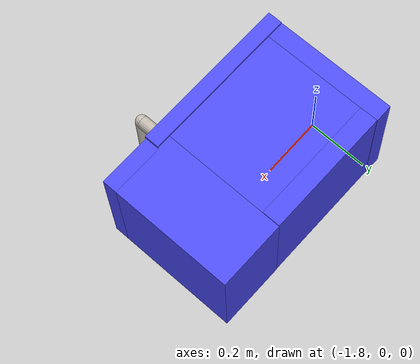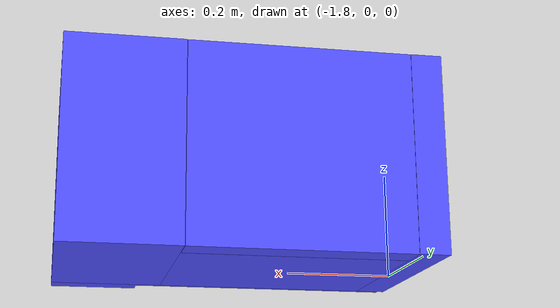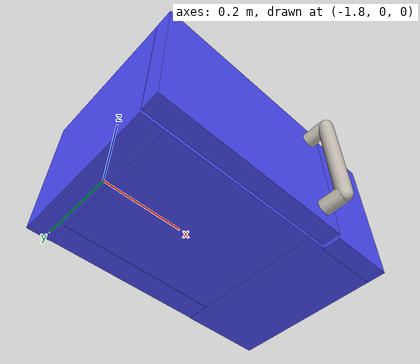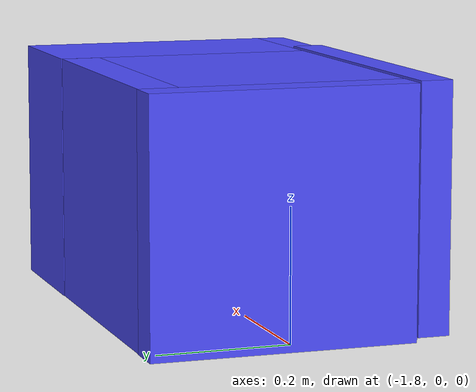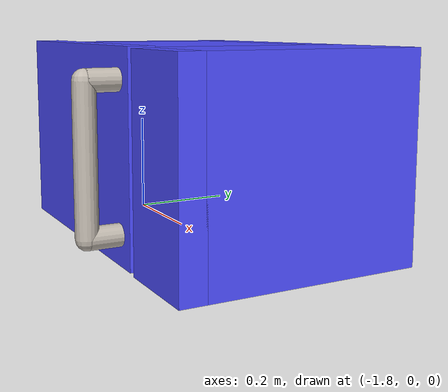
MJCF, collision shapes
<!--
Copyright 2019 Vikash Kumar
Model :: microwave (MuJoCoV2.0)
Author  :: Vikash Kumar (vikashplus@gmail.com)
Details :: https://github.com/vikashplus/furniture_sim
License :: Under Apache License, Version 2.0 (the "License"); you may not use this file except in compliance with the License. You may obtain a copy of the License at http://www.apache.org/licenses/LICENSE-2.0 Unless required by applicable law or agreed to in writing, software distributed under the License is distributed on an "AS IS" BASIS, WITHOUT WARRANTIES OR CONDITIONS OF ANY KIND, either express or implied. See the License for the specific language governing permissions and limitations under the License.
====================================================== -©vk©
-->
<mujoco model="microwave">
    <compiler angle="radian" />
    <include file="../furniture_sim/microwave/microwave_asset.xml"/>
    <visual>
        <headlight diffuse=".9 .9 .9"/>
    </visual>
    <!--- Microwave -©vk©-->
    <worldbody>

        <body pos="-1.5 0 0">
            <include file="../furniture_sim/microwave/microwave_body0.xml"/>
        </body>

    </worldbody>

</mujoco>

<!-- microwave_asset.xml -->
<mujocoinclude>
    <compiler inertiafromgeom="auto" inertiagrouprange="4 4" angle="radian"/>

    <asset>
        <mesh file="../furniture_sim/microwave/meshes/micro.stl" name="micro"/>
        <mesh file="../furniture_sim/microwave/meshes/microdoor.stl" name="microdoor"/>
        <mesh file="../furniture_sim/microwave/meshes/microbutton.stl" name="microbutton"/>
        <mesh file="../furniture_sim/microwave/meshes/microfeet.stl" name="microfeet"/>
        <mesh file="../furniture_sim/microwave/meshes/microhandle.stl" name="microhandle"/>
        <mesh file="../furniture_sim/microwave/meshes/microwindow.stl" name="microwindow"/>

        <texture name="T_micro_metal" type="cube" height="1" width="1" file="../furniture_sim/common/textures/metal0.png"/>

        <material name="micro_metal" rgba="1 1 1 1" texture="T_micro_metal" texrepeat="3 3" reflectance="1" shininess="1" texuniform="false"/>
        <material name="micro_black" rgba=".2 .2 .2 1" reflectance="1" shininess="1"/>
        <material name="micro_white" rgba=".8 .8 .82 1" reflectance="1" shininess="1"/>
        <material name="micro_window" rgba=".4 .4 .4 .25" reflectance="1" shininess="1"/>
        <material name="micro_collision_blue" rgba="0.3 0.3 1.0 0.5" shininess="0" specular="0"/>
    </asset>

    <default>
        <default class="microwave">
            <joint damping="2" frictionloss="2" armature=".01" limited="true"/>
            <geom conaffinity="0" contype="0" group="1" material="micro_black" type="mesh"/>
            <default class="micro_collision">
                <geom conaffinity="1" condim="3" contype="0" group="4" margin="0.001" material="micro_collision_blue" solimp=".8 .9 .01" solref=".02 1"/>
            </default>
        </default>
    </default>

    <sensor>
        <jointpos name="micro0joint" joint="micro0joint"/>
    </sensor>

</mujocoinclude>

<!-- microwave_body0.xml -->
<mujocoinclude>
    <body name="microroot" childclass="microwave">
        <geom mesh="micro"/>
        <geom material="micro_metal" mesh="microbutton"/>
        <geom material="micro_metal" mesh="microfeet"/>

        <geom class="micro_collision" pos="-0.316 0.023 0.187" size="0.029 0.199 0.187" type="box" mass=".5"/>
        <geom class="micro_collision" pos="0.236 0.023 0.187" size="0.109 0.199 0.187" type="box" mass=".5"/>
        <geom class="micro_collision" pos="-0.081 0.191 0.187" size="0.207 0.03 0.187" type="box" mass=".5"/>
        <geom class="micro_collision" pos="-0.08 -0.007 0.355" size="0.207 0.169 0.019" type="box" mass=".5"/>
        <geom class="micro_collision" pos="-0.08 -0.008 0.024" size="0.207 0.168 0.024" type="box" mass=".5"/>
        <geom class="micro_collision" pos="0.26 -0.197 0.187" size="0.085 0.024 0.187" type="box" mass=".5"/>
        <body name="microdoorroot" pos="-0.345 -0.176 0.192">
            <joint axis="0 0 1" limited="true" name="micro0joint" range="-2.094 0"/>
            <geom mesh="microdoor" pos="0.345 0.176 -0.192"/>
            <geom material="micro_window" mesh="microwindow" pos="0.345 0.176 -0.192"/>
            <geom material="micro_metal" pos="0.475 -0.108 0" size="0.02 0.13" type="capsule"/>
            <geom material="micro_metal" euler="1.57 0 0" pos="0.475 -0.075 .13" size="0.02 0.03" type="capsule"/>
            <geom material="micro_metal" euler="1.57 0 0" pos="0.475 -0.075 -.13" size="0.02 0.03" type="capsule"/>

            <geom class="micro_collision" pos="0.475 -0.108 0" size="0.02 0.13" type="capsule" mass="0.020"/>
            <geom class="micro_collision" euler="1.57 0 0" pos="0.475 -0.075 .13" size="0.02 0.03" type="capsule" mass="0.020"/>
            <geom class="micro_collision" euler="1.57 0 0" pos="0.475 -0.075 -.13" size="0.02 0.03" type="capsule" mass="0.020"/>
            <geom class="micro_collision" pos="0.259 -0.026 0" size="0.259 0.024 0.185" type="box" mass="0.20"/>
            <site type="sphere" name="microhandle_site" pos="0.475 -0.108 0" size=".01" group="3" rgba="1 1 0 1"/>
        </body>
    </body>
</mujocoinclude>
